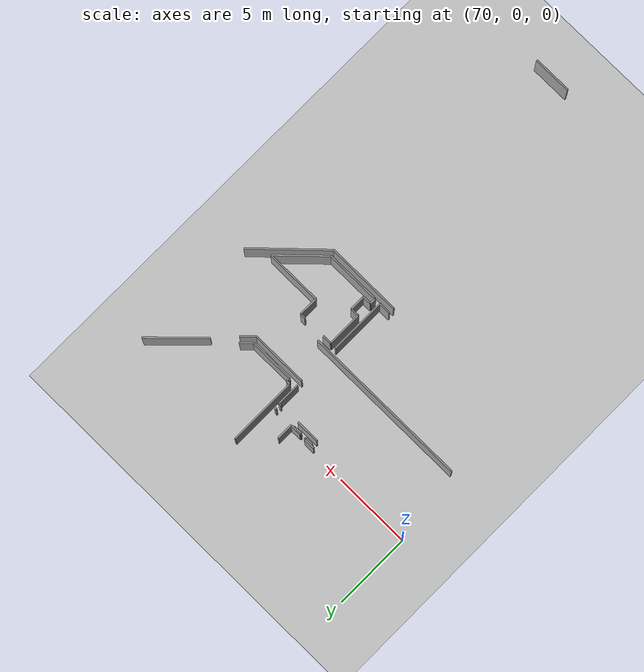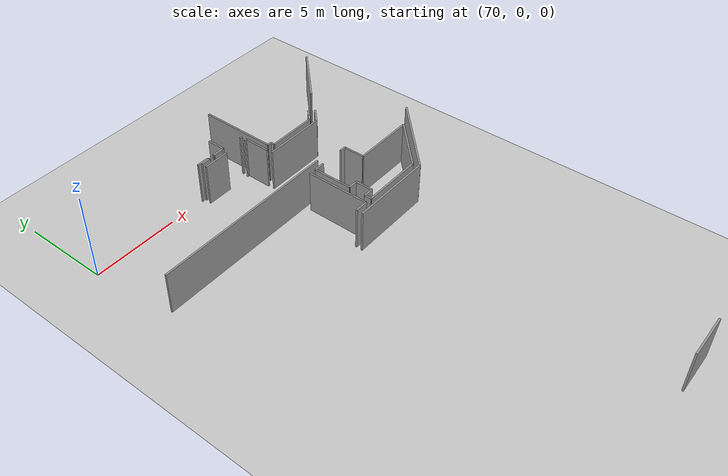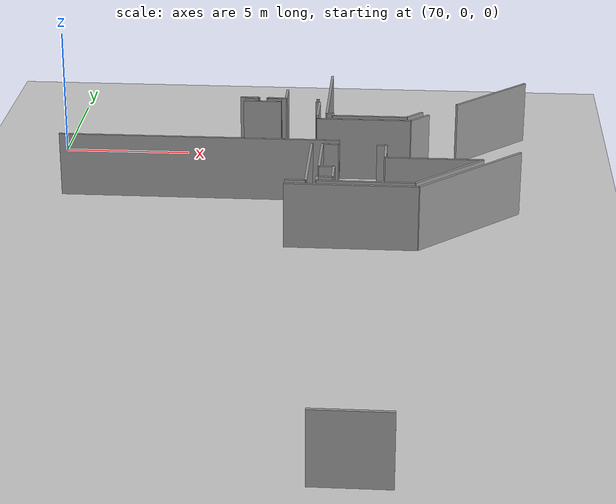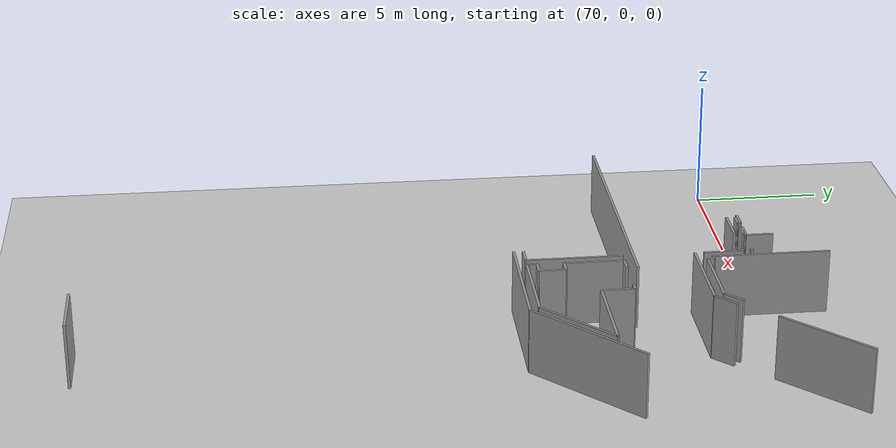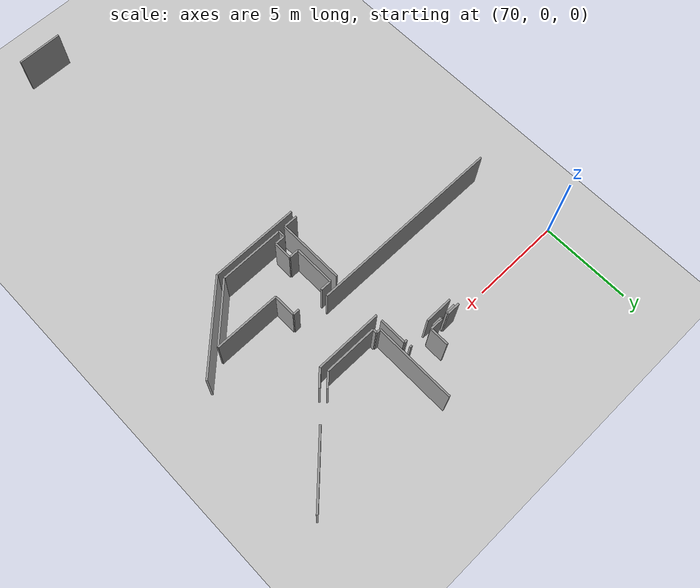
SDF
<sdf version="1.6">
 <world name="default">
  <model name="ground_plane">
   <static>1</static>
   <link name="link">
    <collision name="collision">
     <geometry><plane><normal>0 0 1</normal><size>100 100</size></plane></geometry>
     <surface><friction><ode><mu>100</mu><mu2>50</mu2></ode></friction></surface>
    </collision>
    <visual name="visual">
     <cast_shadows>0</cast_shadows>
     <geometry><plane><normal>0 0 1</normal><size>100 100</size></plane></geometry>
     <material>
      <script><uri>file://media/materials/scripts/gazebo.material</uri><name>Gazebo/Grey</name></script>
     </material>
    </visual>
   </link>
  </model>
  <model name="0510035342_A_40_1_101">
   <static>1</static>
   <link name="Wall_494">
    <collision name="Wall_494_Collision">
     <geometry><box><size>4.87199024688 0.1 2.5</size></box></geometry>
     <pose>2.43599512344 0 1.25 0 0 0</pose>
    </collision>
    <visual name="Wall_494_Visual">
     <pose>2.43599512344 0 1.25 0 0 0</pose>
     <geometry><box><size>4.87199024688 0.1 2.5</size></box></geometry>
     <material>
      <script><uri>file://media/materials/scripts/gazebo.material</uri><name>Gazebo/Grey</name></script>
      <ambient>1 1 1 1</ambient>
     </material>
    </visual>
    <pose>195.306309052 -34.2895966677 0 0 0 0.0</pose>
   </link>
   <link name="Wall_495">
    <collision name="Wall_495_Collision">
     <geometry><box><size>5.20723761378 0.1 2.5</size></box></geometry>
     <pose>2.60361880689 0 1.25 0 0 0</pose>
    </collision>
    <visual name="Wall_495_Visual">
     <pose>2.60361880689 0 1.25 0 0 0</pose>
     <geometry><box><size>5.20723761378 0.1 2.5</size></box></geometry>
     <material>
      <script><uri>file://media/materials/scripts/gazebo.material</uri><name>Gazebo/Grey</name></script>
      <ambient>1 1 1 1</ambient>
     </material>
    </visual>
    <pose>200.178299299 -34.2895966677 0 0 0 0.760321482192</pose>
   </link>
   <link name="Wall_516">
    <collision name="Wall_516_Collision">
     <geometry><box><size>2.52565274815 0.1 2.5</size></box></geometry>
     <pose>1.26282637407 0 1.25 0 0 0</pose>
    </collision>
    <visual name="Wall_516_Visual">
     <pose>1.26282637407 0 1.25 0 0 0</pose>
     <geometry><box><size>2.52565274815 0.1 2.5</size></box></geometry>
     <material>
      <script><uri>file://media/materials/scripts/gazebo.material</uri><name>Gazebo/Grey</name></script>
      <ambient>1 1 1 1</ambient>
     </material>
    </visual>
    <pose>199.679975617 -50.5813776288 0 0 0 3.14159265359</pose>
   </link>
   <link name="Wall_535">
    <collision name="Wall_535_Collision">
     <geometry><box><size>3.67596261302 0.1 2.5</size></box></geometry>
     <pose>1.83798130651 0 1.25 0 0 0</pose>
    </collision>
    <visual name="Wall_535_Visual">
     <pose>1.83798130651 0 1.25 0 0 0</pose>
     <geometry><box><size>3.67596261302 0.1 2.5</size></box></geometry>
     <material>
      <script><uri>file://media/materials/scripts/gazebo.material</uri><name>Gazebo/Grey</name></script>
      <ambient>1 1 1 1</ambient>
     </material>
    </visual>
    <pose>196.11373565 -27.5787361577 0 0 0 0.0</pose>
   </link>
   <link name="Wall_536">
    <collision name="Wall_536_Collision">
     <geometry><box><size>0.984947363516 0.1 2.5</size></box></geometry>
     <pose>0.492473681758 0 1.25 0 0 0</pose>
    </collision>
    <visual name="Wall_536_Visual">
     <pose>0.492473681758 0 1.25 0 0 0</pose>
     <geometry><box><size>0.984947363516 0.1 2.5</size></box></geometry>
     <material>
      <script><uri>file://media/materials/scripts/gazebo.material</uri><name>Gazebo/Grey</name></script>
      <ambient>1 1 1 1</ambient>
     </material>
    </visual>
    <pose>199.789698263 -27.5787361577 0 0 0 0.776280983491</pose>
   </link>
   <link name="Wall_537">
    <collision name="Wall_537_Collision">
     <geometry><box><size>3.9497859464 0.1 2.5</size></box></geometry>
     <pose>1.9748929732 0 1.25 0 0 0</pose>
    </collision>
    <visual name="Wall_537_Visual">
     <pose>1.9748929732 0 1.25 0 0 0</pose>
     <geometry><box><size>3.9497859464 0.1 2.5</size></box></geometry>
     <material>
      <script><uri>file://media/materials/scripts/gazebo.material</uri><name>Gazebo/Grey</name></script>
      <ambient>1 1 1 1</ambient>
     </material>
    </visual>
    <pose>201.610535406 -25.6535101087 0 0 0 0.773439295575</pose>
   </link>
   <link name="Wall_552">
    <collision name="Wall_552_Collision">
     <geometry><box><size>10.7871075891 0.1 2.5</size></box></geometry>
     <pose>5.39355379457 0 1.25 0 0 0</pose>
    </collision>
    <visual name="Wall_552_Visual">
     <pose>5.39355379457 0 1.25 0 0 0</pose>
     <geometry><box><size>10.7871075891 0.1 2.5</size></box></geometry>
     <material>
      <script><uri>file://media/materials/scripts/gazebo.material</uri><name>Gazebo/Grey</name></script>
      <ambient>1 1 1 1</ambient>
     </material>
    </visual>
    <pose>197.124606319 -29.8973890074 0 0 0 3.14159265359</pose>
   </link>
   <link name="Wall_586">
    <collision name="Wall_586_Collision">
     <geometry><box><size>1.51046428934 0.1 2.5</size></box></geometry>
     <pose>0.755232144671 0 1.25 0 0 0</pose>
    </collision>
    <visual name="Wall_586_Visual">
     <pose>0.755232144671 0 1.25 0 0 0</pose>
     <geometry><box><size>1.51046428934 0.1 2.5</size></box></geometry>
     <material>
      <script><uri>file://media/materials/scripts/gazebo.material</uri><name>Gazebo/Grey</name></script>
      <ambient>1 1 1 1</ambient>
     </material>
    </visual>
    <pose>193.06105862 -25.7396119069 0 0 0 0.0</pose>
   </link>
   <link name="Wall_587">
    <collision name="Wall_587_Collision">
     <geometry><box><size>0.15366250127 0.1 2.5</size></box></geometry>
     <pose>0.076831250635 0 1.25 0 0 0</pose>
    </collision>
    <visual name="Wall_587_Visual">
     <pose>0.076831250635 0 1.25 0 0 0</pose>
     <geometry><box><size>0.15366250127 0.1 2.5</size></box></geometry>
     <material>
      <script><uri>file://media/materials/scripts/gazebo.material</uri><name>Gazebo/Grey</name></script>
      <ambient>1 1 1 1</ambient>
     </material>
    </visual>
    <pose>195.968454739 -25.7396119069 0 0 0 0.0</pose>
   </link>
   <link name="Wall_588">
    <collision name="Wall_588_Collision">
     <geometry><box><size>1.50030478513 0.1 2.5</size></box></geometry>
     <pose>0.750152392563 0 1.25 0 0 0</pose>
    </collision>
    <visual name="Wall_588_Visual">
     <pose>0.750152392563 0 1.25 0 0 0</pose>
     <geometry><box><size>1.50030478513 0.1 2.5</size></box></geometry>
     <material>
      <script><uri>file://media/materials/scripts/gazebo.material</uri><name>Gazebo/Grey</name></script>
      <ambient>1 1 1 1</ambient>
     </material>
    </visual>
    <pose>196.122117241 -25.7396119069 0 0 0 -1.57079632679</pose>
   </link>
   <link name="Wall_599">
    <collision name="Wall_599_Collision">
     <geometry><box><size>0.731484303566 0.1 2.5</size></box></geometry>
     <pose>0.365742151783 0 1.25 0 0 0</pose>
    </collision>
    <visual name="Wall_599_Visual">
     <pose>0.365742151783 0 1.25 0 0 0</pose>
     <geometry><box><size>0.731484303566 0.1 2.5</size></box></geometry>
     <material>
      <script><uri>file://media/materials/scripts/gazebo.material</uri><name>Gazebo/Grey</name></script>
      <ambient>1 1 1 1</ambient>
     </material>
    </visual>
    <pose>192.897236615 -25.3093569034 0 0 0 0.0</pose>
   </link>
   <link name="Wall_600">
    <collision name="Wall_600_Collision">
     <geometry><box><size>0.0982932032917 0.1 2.5</size></box></geometry>
     <pose>0.0491466016458 0 1.25 0 0 0</pose>
    </collision>
    <visual name="Wall_600_Visual">
     <pose>0.0491466016458 0 1.25 0 0 0</pose>
     <geometry><box><size>0.0982932032917 0.1 2.5</size></box></geometry>
     <material>
      <script><uri>file://media/materials/scripts/gazebo.material</uri><name>Gazebo/Grey</name></script>
      <ambient>1 1 1 1</ambient>
     </material>
    </visual>
    <pose>193.628720918 -25.3093569034 0 0 0 -1.57079632679</pose>
   </link>
   <link name="Wall_601">
    <collision name="Wall_601_Collision">
     <geometry><box><size>0.52397642995 0.1 2.5</size></box></geometry>
     <pose>0.261988214975 0 1.25 0 0 0</pose>
    </collision>
    <visual name="Wall_601_Visual">
     <pose>0.261988214975 0 1.25 0 0 0</pose>
     <geometry><box><size>0.52397642995 0.1 2.5</size></box></geometry>
     <material>
      <script><uri>file://media/materials/scripts/gazebo.material</uri><name>Gazebo/Grey</name></script>
      <ambient>1 1 1 1</ambient>
     </material>
    </visual>
    <pose>193.628720918 -25.4076501067 0 0 0 3.14159265359</pose>
   </link>
   <link name="Wall_603">
    <collision name="Wall_603_Collision">
     <geometry><box><size>0.075942294016 0.1 2.5</size></box></geometry>
     <pose>0.037971147008 0 1.25 0 0 0</pose>
    </collision>
    <visual name="Wall_603_Visual">
     <pose>0.037971147008 0 1.25 0 0 0</pose>
     <geometry><box><size>0.075942294016 0.1 2.5</size></box></geometry>
     <material>
      <script><uri>file://media/materials/scripts/gazebo.material</uri><name>Gazebo/Grey</name></script>
      <ambient>1 1 1 1</ambient>
     </material>
    </visual>
    <pose>194.008178401 -25.4109519455 0 0 0 1.57079632679</pose>
   </link>
   <link name="Wall_604">
    <collision name="Wall_604_Collision">
     <geometry><box><size>0.735802092858 0.1 2.5</size></box></geometry>
     <pose>0.367901046429 0 1.25 0 0 0</pose>
    </collision>
    <visual name="Wall_604_Visual">
     <pose>0.367901046429 0 1.25 0 0 0</pose>
     <geometry><box><size>0.735802092858 0.1 2.5</size></box></geometry>
     <material>
      <script><uri>file://media/materials/scripts/gazebo.material</uri><name>Gazebo/Grey</name></script>
      <ambient>1 1 1 1</ambient>
     </material>
    </visual>
    <pose>194.008178401 -25.3350096515 0 0 0 0.0</pose>
   </link>
   <link name="Wall_605">
    <collision name="Wall_605_Collision">
     <geometry><box><size>1.04439703342 0.1 2.5</size></box></geometry>
     <pose>0.522198516712 0 1.25 0 0 0</pose>
    </collision>
    <visual name="Wall_605_Visual">
     <pose>0.522198516712 0 1.25 0 0 0</pose>
     <geometry><box><size>1.04439703342 0.1 2.5</size></box></geometry>
     <material>
      <script><uri>file://media/materials/scripts/gazebo.material</uri><name>Gazebo/Grey</name></script>
      <ambient>1 1 1 1</ambient>
     </material>
    </visual>
    <pose>194.743980494 -25.3350096515 0 0 0 1.57079632679</pose>
   </link>
   <link name="Wall_614">
    <collision name="Wall_614_Collision">
     <geometry><box><size>0.130295641573 0.1 2.5</size></box></geometry>
     <pose>0.0651478207863 0 1.25 0 0 0</pose>
    </collision>
    <visual name="Wall_614_Visual">
     <pose>0.0651478207863 0 1.25 0 0 0</pose>
     <geometry><box><size>0.130295641573 0.1 2.5</size></box></geometry>
     <material>
      <script><uri>file://media/materials/scripts/gazebo.material</uri><name>Gazebo/Grey</name></script>
      <ambient>1 1 1 1</ambient>
     </material>
    </visual>
    <pose>196.108655898 -25.3967286396 0 0 0 3.14159265359</pose>
   </link>
   <link name="Wall_615">
    <collision name="Wall_615_Collision">
     <geometry><box><size>0.565047476444 0.1 2.5</size></box></geometry>
     <pose>0.282523738222 0 1.25 0 0 0</pose>
    </collision>
    <visual name="Wall_615_Visual">
     <pose>0.282523738222 0 1.25 0 0 0</pose>
     <geometry><box><size>0.565047476444 0.1 2.5</size></box></geometry>
     <material>
      <script><uri>file://media/materials/scripts/gazebo.material</uri><name>Gazebo/Grey</name></script>
      <ambient>1 1 1 1</ambient>
     </material>
    </visual>
    <pose>194.573046835 -25.3967286396 0 0 0 -3.11641811701</pose>
   </link>
   <link name="Wall_616">
    <collision name="Wall_616_Collision">
     <geometry><box><size>0.384283246978 0.1 2.5</size></box></geometry>
     <pose>0.192141623489 0 1.25 0 0 0</pose>
    </collision>
    <visual name="Wall_616_Visual">
     <pose>0.192141623489 0 1.25 0 0 0</pose>
     <geometry><box><size>0.384283246978 0.1 2.5</size></box></geometry>
     <material>
      <script><uri>file://media/materials/scripts/gazebo.material</uri><name>Gazebo/Grey</name></script>
      <ambient>1 1 1 1</ambient>
     </material>
    </visual>
    <pose>196.473636087 -33.9380778218 0 0 0 1.57079632679</pose>
   </link>
   <link name="Wall_617">
    <collision name="Wall_617_Collision">
     <geometry><box><size>0.560042669918 0.1 2.5</size></box></geometry>
     <pose>0.280021334959 0 1.25 0 0 0</pose>
    </collision>
    <visual name="Wall_617_Visual">
     <pose>0.280021334959 0 1.25 0 0 0</pose>
     <geometry><box><size>0.560042669918 0.1 2.5</size></box></geometry>
     <material>
      <script><uri>file://media/materials/scripts/gazebo.material</uri><name>Gazebo/Grey</name></script>
      <ambient>1 1 1 1</ambient>
     </material>
    </visual>
    <pose>196.473636087 -33.5537945748 0 0 0 0.0</pose>
   </link>
   <link name="Wall_618">
    <collision name="Wall_618_Collision">
     <geometry><box><size>0.999187239663 0.1 2.5</size></box></geometry>
     <pose>0.499593619831 0 1.25 0 0 0</pose>
    </collision>
    <visual name="Wall_618_Visual">
     <pose>0.499593619831 0 1.25 0 0 0</pose>
     <geometry><box><size>0.999187239663 0.1 2.5</size></box></geometry>
     <material>
      <script><uri>file://media/materials/scripts/gazebo.material</uri><name>Gazebo/Grey</name></script>
      <ambient>1 1 1 1</ambient>
     </material>
    </visual>
    <pose>197.033678756 -33.5537945748 0 0 0 1.57079632679</pose>
   </link>
   <link name="Wall_619">
    <collision name="Wall_619_Collision">
     <geometry><box><size>0.549121202885 0.1 2.5</size></box></geometry>
     <pose>0.274560601443 0 1.25 0 0 0</pose>
    </collision>
    <visual name="Wall_619_Visual">
     <pose>0.274560601443 0 1.25 0 0 0</pose>
     <geometry><box><size>0.549121202885 0.1 2.5</size></box></geometry>
     <material>
      <script><uri>file://media/materials/scripts/gazebo.material</uri><name>Gazebo/Grey</name></script>
      <ambient>1 1 1 1</ambient>
     </material>
    </visual>
    <pose>197.033678756 -32.5546073352 0 0 0 3.14159265359</pose>
   </link>
   <link name="Wall_620">
    <collision name="Wall_620_Collision">
     <geometry><box><size>2.2510921467 0.1 2.5</size></box></geometry>
     <pose>1.12554607335 0 1.25 0 0 0</pose>
    </collision>
    <visual name="Wall_620_Visual">
     <pose>1.12554607335 0 1.25 0 0 0</pose>
     <geometry><box><size>2.2510921467 0.1 2.5</size></box></geometry>
     <material>
      <script><uri>file://media/materials/scripts/gazebo.material</uri><name>Gazebo/Grey</name></script>
      <ambient>1 1 1 1</ambient>
     </material>
    </visual>
    <pose>196.484557554 -32.5546073352 0 0 0 1.57079632679</pose>
   </link>
   <link name="Wall_621">
    <collision name="Wall_621_Collision">
     <geometry><box><size>0.609570252972 0.1 2.5</size></box></geometry>
     <pose>0.304785126486 0 1.25 0 0 0</pose>
    </collision>
    <visual name="Wall_621_Visual">
     <pose>0.304785126486 0 1.25 0 0 0</pose>
     <geometry><box><size>0.609570252972 0.1 2.5</size></box></geometry>
     <material>
      <script><uri>file://media/materials/scripts/gazebo.material</uri><name>Gazebo/Grey</name></script>
      <ambient>1 1 1 1</ambient>
     </material>
    </visual>
    <pose>196.484557554 -30.3035151885 0 0 0 0.0</pose>
   </link>
   <link name="Wall_622">
    <collision name="Wall_622_Collision">
     <geometry><box><size>0.351264858275 0.1 2.5</size></box></geometry>
     <pose>0.175632429137 0 1.25 0 0 0</pose>
    </collision>
    <visual name="Wall_622_Visual">
     <pose>0.175632429137 0 1.25 0 0 0</pose>
     <geometry><box><size>0.351264858275 0.1 2.5</size></box></geometry>
     <material>
      <script><uri>file://media/materials/scripts/gazebo.material</uri><name>Gazebo/Grey</name></script>
      <ambient>1 1 1 1</ambient>
     </material>
    </visual>
    <pose>198.54896881 -30.3035151885 0 0 0 0.0</pose>
   </link>
   <link name="Wall_623">
    <collision name="Wall_623_Collision">
     <geometry><box><size>1.22980798537 0.1 2.5</size></box></geometry>
     <pose>0.614903992685 0 1.25 0 0 0</pose>
    </collision>
    <visual name="Wall_623_Visual">
     <pose>0.614903992685 0 1.25 0 0 0</pose>
     <geometry><box><size>1.22980798537 0.1 2.5</size></box></geometry>
     <material>
      <script><uri>file://media/materials/scripts/gazebo.material</uri><name>Gazebo/Grey</name></script>
      <ambient>1 1 1 1</ambient>
     </material>
    </visual>
    <pose>198.900233669 -30.3035151885 0 0 0 -1.57079632679</pose>
   </link>
   <link name="Wall_624">
    <collision name="Wall_624_Collision">
     <geometry><box><size>3.63456263334 0.1 2.5</size></box></geometry>
     <pose>1.81728131667 0 1.25 0 0 0</pose>
    </collision>
    <visual name="Wall_624_Visual">
     <pose>1.81728131667 0 1.25 0 0 0</pose>
     <geometry><box><size>3.63456263334 0.1 2.5</size></box></geometry>
     <material>
      <script><uri>file://media/materials/scripts/gazebo.material</uri><name>Gazebo/Grey</name></script>
      <ambient>1 1 1 1</ambient>
     </material>
    </visual>
    <pose>198.900233669 -31.5333231738 0 0 0 0.0</pose>
   </link>
   <link name="Wall_625">
    <collision name="Wall_625_Collision">
     <geometry><box><size>3.45933992227 0.1 2.5</size></box></geometry>
     <pose>1.72966996114 0 1.25 0 0 0</pose>
    </collision>
    <visual name="Wall_625_Visual">
     <pose>1.72966996114 0 1.25 0 0 0</pose>
     <geometry><box><size>3.45933992227 0.1 2.5</size></box></geometry>
     <material>
      <script><uri>file://media/materials/scripts/gazebo.material</uri><name>Gazebo/Grey</name></script>
      <ambient>1 1 1 1</ambient>
     </material>
    </visual>
    <pose>202.534796302 -31.5333231738 0 0 0 -2.37592398927</pose>
   </link>
   <link name="Wall_626">
    <collision name="Wall_626_Collision">
     <geometry><box><size>3.56726352216 0.1 2.5</size></box></geometry>
     <pose>1.78363176108 0 1.25 0 0 0</pose>
    </collision>
    <visual name="Wall_626_Visual">
     <pose>1.78363176108 0 1.25 0 0 0</pose>
     <geometry><box><size>3.56726352216 0.1 2.5</size></box></geometry>
     <material>
      <script><uri>file://media/materials/scripts/gazebo.material</uri><name>Gazebo/Grey</name></script>
      <ambient>1 1 1 1</ambient>
     </material>
    </visual>
    <pose>200.040892004 -33.9307121812 0 0 0 -3.13952786478</pose>
   </link>
   <link name="Wall_627">
    <collision name="Wall_627_Collision">
     <geometry><box><size>4.44173524332 0.1 2.5</size></box></geometry>
     <pose>2.22086762166 0 1.25 0 0 0</pose>
    </collision>
    <visual name="Wall_627_Visual">
     <pose>2.22086762166 0 1.25 0 0 0</pose>
     <geometry><box><size>4.44173524332 0.1 2.5</size></box></geometry>
     <material>
      <script><uri>file://media/materials/scripts/gazebo.material</uri><name>Gazebo/Grey</name></script>
      <ambient>1 1 1 1</ambient>
     </material>
    </visual>
    <pose>196.48074774 -26.9600223509 0 0 0 1.57079632679</pose>
   </link>
   <link name="Wall_632">
    <collision name="Wall_632_Collision">
     <geometry><box><size>0.837098644459 0.1 2.5</size></box></geometry>
     <pose>0.41854932223 0 1.25 0 0 0</pose>
    </collision>
    <visual name="Wall_632_Visual">
     <pose>0.41854932223 0 1.25 0 0 0</pose>
     <geometry><box><size>0.837098644459 0.1 2.5</size></box></geometry>
     <material>
      <script><uri>file://media/materials/scripts/gazebo.material</uri><name>Gazebo/Grey</name></script>
      <ambient>1 1 1 1</ambient>
     </material>
    </visual>
    <pose>200.235700498 -26.608503505 0 0 0 -2.35640903642</pose>
   </link>
   <link name="Wall_633">
    <collision name="Wall_633_Collision">
     <geometry><box><size>2.92187341258 0.1 2.5</size></box></geometry>
     <pose>1.46093670629 0 1.25 0 0 0</pose>
    </collision>
    <visual name="Wall_633_Visual">
     <pose>1.46093670629 0 1.25 0 0 0</pose>
     <geometry><box><size>2.92187341258 0.1 2.5</size></box></geometry>
     <material>
      <script><uri>file://media/materials/scripts/gazebo.material</uri><name>Gazebo/Grey</name></script>
      <ambient>1 1 1 1</ambient>
     </material>
    </visual>
    <pose>199.64365539 -27.2002946256 0 0 0 3.14159265359</pose>
   </link>
   <link name="Wall_634">
    <collision name="Wall_634_Collision">
     <geometry><box><size>0.229096820075 0.1 2.5</size></box></geometry>
     <pose>0.114548410038 0 1.25 0 0 0</pose>
    </collision>
    <visual name="Wall_634_Visual">
     <pose>0.114548410038 0 1.25 0 0 0</pose>
     <geometry><box><size>0.229096820075 0.1 2.5</size></box></geometry>
     <material>
      <script><uri>file://media/materials/scripts/gazebo.material</uri><name>Gazebo/Grey</name></script>
      <ambient>1 1 1 1</ambient>
     </material>
    </visual>
    <pose>196.721781977 -27.2002946256 0 0 0 1.57079632679</pose>
   </link>
   <link name="Wall_635">
    <collision name="Wall_635_Collision">
     <geometry><box><size>0.241293171158 0.1 2.5</size></box></geometry>
     <pose>0.120646585579 0 1.25 0 0 0</pose>
    </collision>
    <visual name="Wall_635_Visual">
     <pose>0.120646585579 0 1.25 0 0 0</pose>
     <geometry><box><size>0.241293171158 0.1 2.5</size></box></geometry>
     <material>
      <script><uri>file://media/materials/scripts/gazebo.material</uri><name>Gazebo/Grey</name></script>
      <ambient>1 1 1 1</ambient>
     </material>
    </visual>
    <pose>196.721781977 -26.9711978055 0 0 0 3.09526123944</pose>
   </link>
   <link name="Wall_654">
    <collision name="Wall_654_Collision">
     <geometry><box><size>3.64421416235 0.1 2.5</size></box></geometry>
     <pose>1.82210708117 0 1.25 0 0 0</pose>
    </collision>
    <visual name="Wall_654_Visual">
     <pose>1.82210708117 0 1.25 0 0 0</pose>
     <geometry><box><size>3.64421416235 0.1 2.5</size></box></geometry>
     <material>
      <script><uri>file://media/materials/scripts/gazebo.material</uri><name>Gazebo/Grey</name></script>
      <ambient>1 1 1 1</ambient>
     </material>
    </visual>
    <pose>196.081733211 -30.2829421924 0 0 0 -1.57079632679</pose>
   </link>
   <link name="Wall_655">
    <collision name="Wall_655_Collision">
     <geometry><box><size>0.761200853398 0.1 2.5</size></box></geometry>
     <pose>0.380600426699 0 1.25 0 0 0</pose>
    </collision>
    <visual name="Wall_655_Visual">
     <pose>0.380600426699 0 1.25 0 0 0</pose>
     <geometry><box><size>0.761200853398 0.1 2.5</size></box></geometry>
     <material>
      <script><uri>file://media/materials/scripts/gazebo.material</uri><name>Gazebo/Grey</name></script>
      <ambient>1 1 1 1</ambient>
     </material>
    </visual>
    <pose>196.081733211 -33.9271563548 0 0 0 3.14159265359</pose>
   </link>
   <pose>-115.7 25.291537133 0 0 0 0</pose>
  </model>
 </world>
</sdf>
